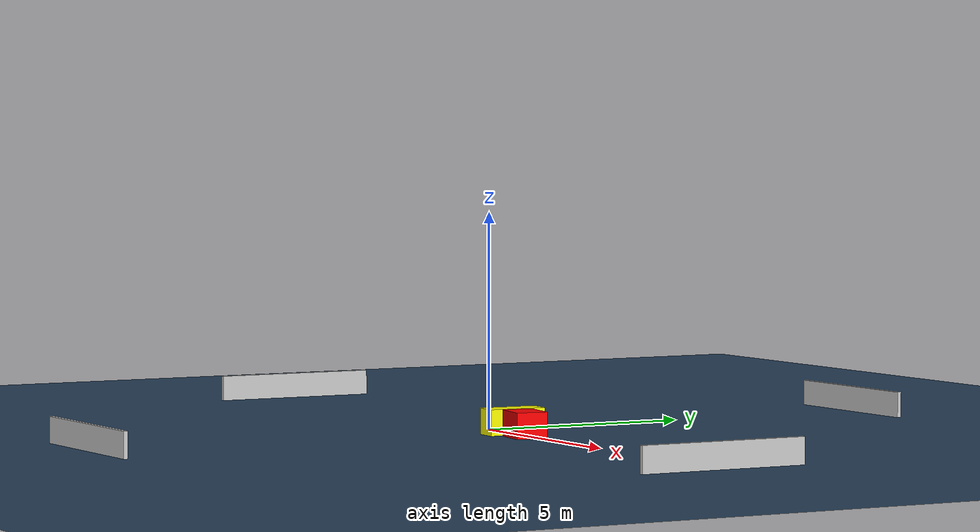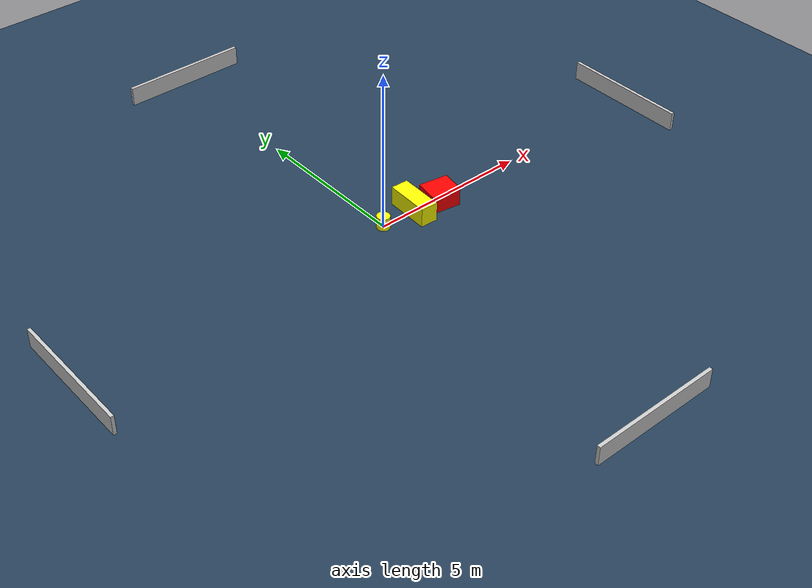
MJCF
<?xml version="1.0" ?>
<mujoco model="generated_environment">
  <option timestep="0.01" integrator="RK4" cone="elliptic"/>
  <default>
    <geom density="1"/>
  </default>
  <asset>
    <texture builtin="gradient" height="3072" name="skybox" rgb1="0.3 0.5 0.7" rgb2="0 0 0" type="skybox" width="512"/>
    <texture builtin="checker" height="300" name="groundplane" rgb1="0.2 0.3 0.4" rgb2="0.1 0.2 0.3" type="2d" width="300"/>
    <material name="groundplane" reflectance="0.2" texrepeat="5 5" texture="groundplane"/>
  </asset>
  <worldbody>
    <light dir="0 0 -1" directional="true" pos="0 0 1.5"/>
    <geom condim="3" friction="0.5 0.005 0.001" material="groundplane" name="floor" pos="0 0 0" size="0 0 0.05" type="plane"/>
    <body name="walls">
      <geom name="wall_1" condim="4" pos="-10.0 0.0 0.3" rgba="0.800000011920929 0.800000011920929 0.800000011920929 1.0" size="0.05 2.0 0.3" type="box"/>
      <geom name="wall_2" condim="4" pos="10.0 0.0 0.3" rgba="0.800000011920929 0.800000011920929 0.800000011920929 1.0" size="0.05 2.0 0.3" type="box"/>
      <geom name="wall_3" condim="4" pos="0.0 -10.0 0.3" rgba="0.800000011920929 0.800000011920929 0.800000011920929 1.0" size="2.0 0.05 0.3" type="box"/>
      <geom name="wall_4" condim="4" pos="0.0 10.0 0.3" rgba="0.800000011920929 0.800000011920929 0.800000011920929 1.0" size="2.0 0.05 0.3" type="box"/>
    </body>
    <body name="robot">
      <joint name="joint_x" type="slide" pos="0 0 0" axis="1 0 0"/>
      <joint name="joint_y" type="slide" pos="0 0 0" axis="0 1 0"/>
      <geom name="robot" type="cylinder" pos="0.0 0.0 0.2" size="0.2 0.2 0.0" mass="5.0" friction="1.0 0.005 0.0001" condim="4" rgba="1.0 1.0 0.0 1.0"/>
    </body>
    <body name="obstacle_1_movable">
      <geom name="obstacle_1_movable" condim="4" pos="1.1282034642289425 -0.02467490668555526 0.3" euler="0 0 87.63575525285995" friction="0.0 0.005 0.001" rgba="1.0 1.0 0.0 1.0" size="0.6848937733829942 0.27341318630190303 0.3" type="box" mass="0.1"/>
      <joint type="free"/>
    </body>
    <body name="obstacle_2_static">
      <geom name="obstacle_2_static" condim="4" pos="1.9558376847349375 -0.17891635533792116 0.3" euler="0 0 351.04829077991616" friction="0.0 0.005 0.001" rgba="1.0 0.0 0.0 1.0" size="0.46392573053365677 0.3612975563811853 0.3" type="box"/>
    </body>
  </worldbody>
  <actuator>
    <motor name="actuator_x" joint="joint_x" gear="1" ctrlrange="-1 1"/>
    <motor name="actuator_y" joint="joint_y" gear="1" ctrlrange="-1 1"/>
  </actuator>
</mujoco>
